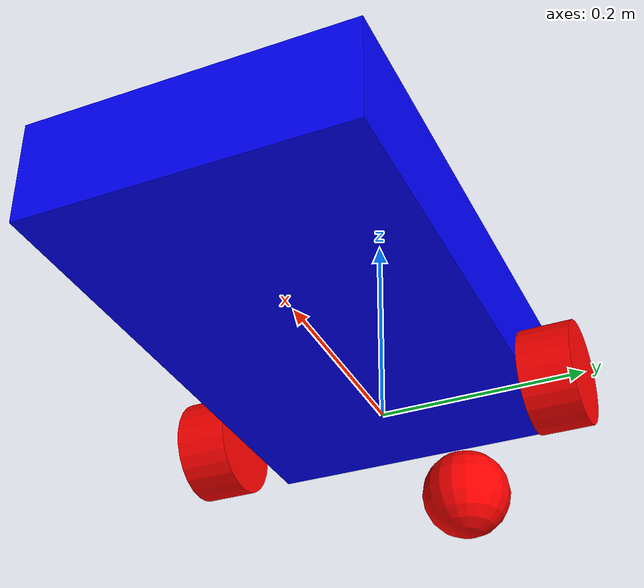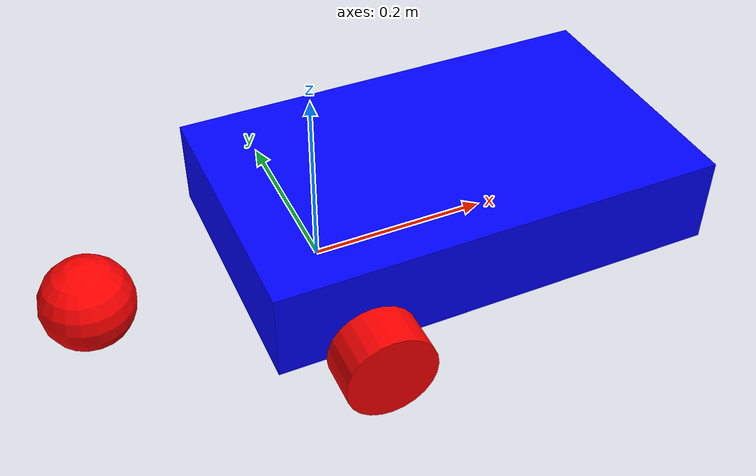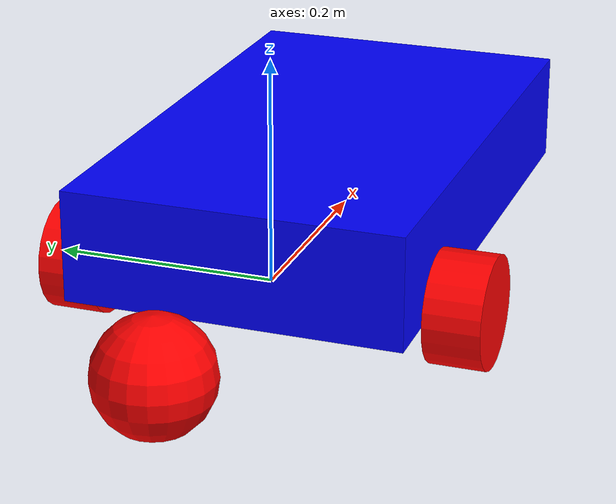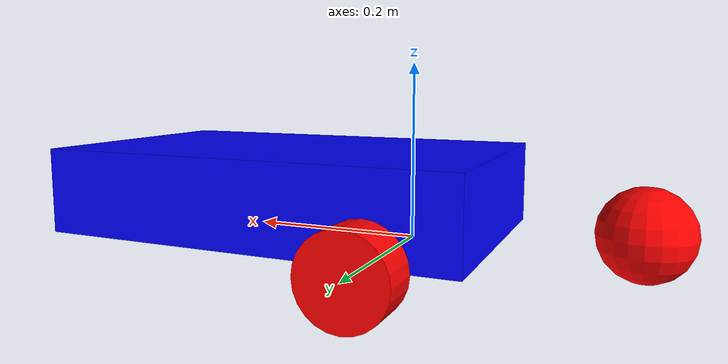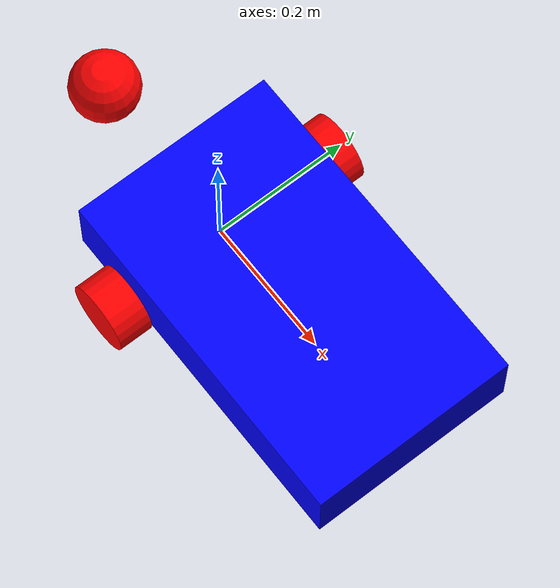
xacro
<?xml version = "1.0"?>
<robot xmlns:xacro="http://www.ros.org/wiki/xacro">

<xacro:include filename="inertial_macros.xacro"/>

<!-- Base link -->
<link name="base_link">
</link>

<!--Chassis-->
<joint name = "chassis_joint" type = "fixed">
    <parent link = "base_link"/>
    <child link= "chassis"/>
    <origin xyz = "-0.1 0 0" rpy = "0 0 0"/>
</joint>

<link name = "chassis">
    <visual>
        <origin xyz = "0.25 0 0.05" rpy = "0 0 0"/>
        <geometry>
            <box size = "0.5 0.3 0.1"/>
        </geometry>
        <material name = "blue">
            <color rgba = "0 0 1 1"/>
        </material>
    </visual>
    <collision>
        <origin xyz = "0.25 0 0.05" rpy = "0 0 0"/>
        <geometry>
            <box size = "0.5 0.3 0.1"/>
        </geometry>
    </collision>
    <xacro:inertial_box mass="2.0" x="0.5" y="0.3" z="0.1">
        <origin xyz = "0.25 0 0.05"/>
    </xacro:inertial_box>

</link>

<!-- Left wheel -->
<joint name="left_wheel_joint" type="continuous">
  <parent link="base_link"/>
  <child link="left_wheel"/>

  <!-- Wheel position relative to base -->
  <origin xyz="0 0.175 0" rpy="0 0 0"/>

  <!-- Wheel rotates about Y axis -->
  <axis xyz="0 1 0"/>
</joint>

<link name="left_wheel">

  <!-- VISUAL -->
  <visual>
    <!-- Rotate cylinder so it rolls on ground -->
    <origin xyz = "0 0 0" rpy="-1.5708 0 0"/>
    <geometry>
      <cylinder radius="0.05" length="0.05"/>
    </geometry>
    <material name="red">
      <color rgba="1 0 0 1"/>
    </material>
  </visual>

  <!-- COLLISION -->
  <collision>
    <!-- MUST match visual orientation -->
    <origin xyz ="0 0 0" rpy="-1.5708 0 0"/>
    <geometry>
      <cylinder radius="0.05" length="0.05"/>
    </geometry>
  </collision>

  <!-- INERTIAL -->
  <xacro:inertial_cylinder mass="0.1" length="0.05" radius="0.05">
    <!-- MUST match visual/collision orientation -->
    <origin xyz="0 0 0" rpy="-1.5708 0 0"/>
  </xacro:inertial_cylinder>

</link>

<!-- right wheel -->
<!-- Right wheel -->
<joint name="right_wheel_joint" type="continuous">
  <parent link="base_link"/>
  <child link="right_wheel"/>

  <!-- Wheel position relative to base -->
  <origin xyz="0 -0.175 0" rpy="0 0 0"/>

  <!-- SAME axis as left wheel -->
  <axis xyz="0 1 0"/>
</joint>

<link name="right_wheel">

  <!-- VISUAL -->
  <visual>
    <!-- Rotate cylinder so it rolls on ground -->
    <origin xyz="0 0 0" rpy="-1.5708 0 0"/>
    <geometry>
      <cylinder radius="0.05" length="0.05"/>
    </geometry>
    <material name="red">
      <color rgba="1 0 0 1"/>
    </material>
  </visual>

  <!-- COLLISION -->
  <collision>
    <!-- MUST match visual orientation -->
    <origin xyz ="0 0 0" rpy="-1.5708 0 0"/>
    <geometry>
      <cylinder radius="0.05" length="0.05"/>
    </geometry>
  </collision>

  <!-- INERTIAL -->
  <xacro:inertial_cylinder mass="0.1" length="0.05" radius="0.05">
    <!-- MUST match visual/collision orientation -->
    <origin xyz="0 0 0" rpy="-1.5708 0 0"/>
  </xacro:inertial_cylinder>

</link>

<joint name  = "casterwheel" type = "fixed">
    <parent link = "chassis"/>
    <child link = "caster_wheel"/>
    <origin xyz = "-0.15 0 0.025" rpy = "0 0 0"/>
</joint>

<link name = "caster_wheel">
    <visual>
        <origin xyz = "0 0 0"/>
        <geometry>
            <sphere radius = "0.05"/>
        </geometry>
        <material name = "red">
            <color rgba = "1 0 0 1"/>
        </material>
    </visual>
    <collision>
        <origin xyz = "0 0 0"/>
        <geometry>
            <sphere radius = "0.05"/>
        </geometry>
    </collision>
    <xacro:inertial_sphere mass = "0.04" radius="0.05">
        <origin xyz ="0 0 0" rpy="0 0 0"/>
    </xacro:inertial_sphere>
</link>

</robot>
